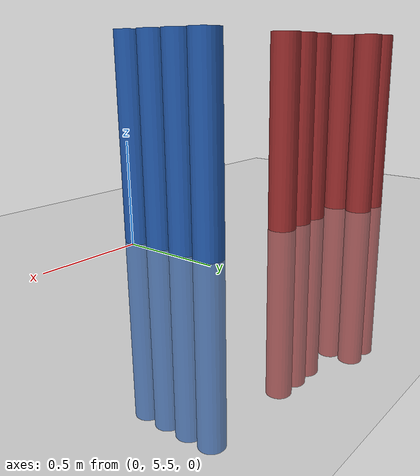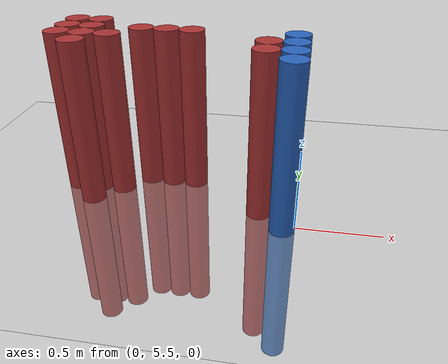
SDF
<sdf version="1.6">
 <world name="default">
  <model name="ground_plane">
   <static>1</static>
   <link name="link">
    <collision name="collision">
     <geometry><plane><normal>0 0 1</normal><size>100 100</size></plane></geometry>
     <surface><friction><ode><mu>100</mu><mu2>50</mu2></ode></friction></surface>
    </collision>
    <visual name="visual">
     <cast_shadows>0</cast_shadows>
     <geometry><plane><normal>0 0 1</normal><size>100 100</size></plane></geometry>
     <material>
      <script><uri>file://media/materials/scripts/gazebo.material</uri><name>Gazebo/Grey</name></script>
     </material>
    </visual>
   </link>
  </model>
  <model name="unit_cylinder_194">
   <static>1</static>
   <pose>-1.425000 5.775000 0.000000 0.000000 0.000000 0.000000</pose>
   <link name="link">
    <inertial>
     <mass>1</mass>
     <inertia><ixx>0.145833</ixx><ixy>0</ixy><ixz>0</ixz><iyy>0.145833</iyy><iyz>0</iyz><izz>0.125</izz></inertia>
    </inertial>
    <collision name="collision">
     <geometry><cylinder><radius>0.075000</radius><length>2</length></cylinder></geometry>
    </collision>
    <visual name="visual">
     <geometry><cylinder><radius>0.075000</radius><length>2</length></cylinder></geometry>
     <material>
      <ambient>0.648000 0.192000 0.192000 1</ambient>
      <diffuse>0.648000 0.192000 0.192000 1</diffuse>
     </material>
     <material>
      <script><name>Gazebo/Grey</name><uri>file://media/materials/scripts/gazebo.material</uri></script>
     </material>
    </visual>
   </link>
  </model>
  <model name="unit_cylinder_195">
   <static>1</static>
   <pose>-1.425000 5.925000 0.000000 0.000000 0.000000 0.000000</pose>
   <link name="link">
    <inertial>
     <mass>1</mass>
     <inertia><ixx>0.145833</ixx><ixy>0</ixy><ixz>0</ixz><iyy>0.145833</iyy><iyz>0</iyz><izz>0.125</izz></inertia>
    </inertial>
    <collision name="collision">
     <geometry><cylinder><radius>0.075000</radius><length>2</length></cylinder></geometry>
    </collision>
    <visual name="visual">
     <geometry><cylinder><radius>0.075000</radius><length>2</length></cylinder></geometry>
     <material>
      <ambient>0.648000 0.192000 0.192000 1</ambient>
      <diffuse>0.648000 0.192000 0.192000 1</diffuse>
     </material>
     <material>
      <script><name>Gazebo/Grey</name><uri>file://media/materials/scripts/gazebo.material</uri></script>
     </material>
    </visual>
   </link>
  </model>
  <model name="unit_cylinder_196">
   <static>1</static>
   <pose>-1.425000 6.075000 0.000000 0.000000 0.000000 0.000000</pose>
   <link name="link">
    <inertial>
     <mass>1</mass>
     <inertia><ixx>0.145833</ixx><ixy>0</ixy><ixz>0</ixz><iyy>0.145833</iyy><iyz>0</iyz><izz>0.125</izz></inertia>
    </inertial>
    <collision name="collision">
     <geometry><cylinder><radius>0.075000</radius><length>2</length></cylinder></geometry>
    </collision>
    <visual name="visual">
     <geometry><cylinder><radius>0.075000</radius><length>2</length></cylinder></geometry>
     <material>
      <ambient>0.648000 0.192000 0.192000 1</ambient>
      <diffuse>0.648000 0.192000 0.192000 1</diffuse>
     </material>
     <material>
      <script><name>Gazebo/Grey</name><uri>file://media/materials/scripts/gazebo.material</uri></script>
     </material>
    </visual>
   </link>
  </model>
  <model name="unit_cylinder_202">
   <static>1</static>
   <pose>-1.275000 5.625000 0.000000 0.000000 0.000000 0.000000</pose>
   <link name="link">
    <inertial>
     <mass>1</mass>
     <inertia><ixx>0.145833</ixx><ixy>0</ixy><ixz>0</ixz><iyy>0.145833</iyy><iyz>0</iyz><izz>0.125</izz></inertia>
    </inertial>
    <collision name="collision">
     <geometry><cylinder><radius>0.075000</radius><length>2</length></cylinder></geometry>
    </collision>
    <visual name="visual">
     <geometry><cylinder><radius>0.075000</radius><length>2</length></cylinder></geometry>
     <material>
      <ambient>0.648000 0.192000 0.192000 1</ambient>
      <diffuse>0.648000 0.192000 0.192000 1</diffuse>
     </material>
     <material>
      <script><name>Gazebo/Grey</name><uri>file://media/materials/scripts/gazebo.material</uri></script>
     </material>
    </visual>
   </link>
  </model>
  <model name="unit_cylinder_203">
   <static>1</static>
   <pose>-1.275000 5.775000 0.000000 0.000000 0.000000 0.000000</pose>
   <link name="link">
    <inertial>
     <mass>1</mass>
     <inertia><ixx>0.145833</ixx><ixy>0</ixy><ixz>0</ixz><iyy>0.145833</iyy><iyz>0</iyz><izz>0.125</izz></inertia>
    </inertial>
    <collision name="collision">
     <geometry><cylinder><radius>0.075000</radius><length>2</length></cylinder></geometry>
    </collision>
    <visual name="visual">
     <geometry><cylinder><radius>0.075000</radius><length>2</length></cylinder></geometry>
     <material>
      <ambient>0.648000 0.192000 0.192000 1</ambient>
      <diffuse>0.648000 0.192000 0.192000 1</diffuse>
     </material>
     <material>
      <script><name>Gazebo/Grey</name><uri>file://media/materials/scripts/gazebo.material</uri></script>
     </material>
    </visual>
   </link>
  </model>
  <model name="unit_cylinder_204">
   <static>1</static>
   <pose>-1.275000 5.925000 0.000000 0.000000 0.000000 0.000000</pose>
   <link name="link">
    <inertial>
     <mass>1</mass>
     <inertia><ixx>0.145833</ixx><ixy>0</ixy><ixz>0</ixz><iyy>0.145833</iyy><iyz>0</iyz><izz>0.125</izz></inertia>
    </inertial>
    <collision name="collision">
     <geometry><cylinder><radius>0.075000</radius><length>2</length></cylinder></geometry>
    </collision>
    <visual name="visual">
     <geometry><cylinder><radius>0.075000</radius><length>2</length></cylinder></geometry>
     <material>
      <ambient>0.648000 0.192000 0.192000 1</ambient>
      <diffuse>0.648000 0.192000 0.192000 1</diffuse>
     </material>
     <material>
      <script><name>Gazebo/Grey</name><uri>file://media/materials/scripts/gazebo.material</uri></script>
     </material>
    </visual>
   </link>
  </model>
  <model name="unit_cylinder_205">
   <static>1</static>
   <pose>-1.275000 6.075000 0.000000 0.000000 0.000000 0.000000</pose>
   <link name="link">
    <inertial>
     <mass>1</mass>
     <inertia><ixx>0.145833</ixx><ixy>0</ixy><ixz>0</ixz><iyy>0.145833</iyy><iyz>0</iyz><izz>0.125</izz></inertia>
    </inertial>
    <collision name="collision">
     <geometry><cylinder><radius>0.075000</radius><length>2</length></cylinder></geometry>
    </collision>
    <visual name="visual">
     <geometry><cylinder><radius>0.075000</radius><length>2</length></cylinder></geometry>
     <material>
      <ambient>0.648000 0.192000 0.192000 1</ambient>
      <diffuse>0.648000 0.192000 0.192000 1</diffuse>
     </material>
     <material>
      <script><name>Gazebo/Grey</name><uri>file://media/materials/scripts/gazebo.material</uri></script>
     </material>
    </visual>
   </link>
  </model>
  <model name="unit_cylinder_210">
   <static>1</static>
   <pose>-1.125000 5.775000 0.000000 0.000000 0.000000 0.000000</pose>
   <link name="link">
    <inertial>
     <mass>1</mass>
     <inertia><ixx>0.145833</ixx><ixy>0</ixy><ixz>0</ixz><iyy>0.145833</iyy><iyz>0</iyz><izz>0.125</izz></inertia>
    </inertial>
    <collision name="collision">
     <geometry><cylinder><radius>0.075000</radius><length>2</length></cylinder></geometry>
    </collision>
    <visual name="visual">
     <geometry><cylinder><radius>0.075000</radius><length>2</length></cylinder></geometry>
     <material>
      <ambient>0.648000 0.192000 0.192000 1</ambient>
      <diffuse>0.648000 0.192000 0.192000 1</diffuse>
     </material>
     <material>
      <script><name>Gazebo/Grey</name><uri>file://media/materials/scripts/gazebo.material</uri></script>
     </material>
    </visual>
   </link>
  </model>
  <model name="unit_cylinder_215">
   <static>1</static>
   <pose>-0.975000 5.925000 0.000000 0.000000 0.000000 0.000000</pose>
   <link name="link">
    <inertial>
     <mass>1</mass>
     <inertia><ixx>0.145833</ixx><ixy>0</ixy><ixz>0</ixz><iyy>0.145833</iyy><iyz>0</iyz><izz>0.125</izz></inertia>
    </inertial>
    <collision name="collision">
     <geometry><cylinder><radius>0.075000</radius><length>2</length></cylinder></geometry>
    </collision>
    <visual name="visual">
     <geometry><cylinder><radius>0.075000</radius><length>2</length></cylinder></geometry>
     <material>
      <ambient>0.648000 0.192000 0.192000 1</ambient>
      <diffuse>0.648000 0.192000 0.192000 1</diffuse>
     </material>
     <material>
      <script><name>Gazebo/Grey</name><uri>file://media/materials/scripts/gazebo.material</uri></script>
     </material>
    </visual>
   </link>
  </model>
  <model name="unit_cylinder_219">
   <static>1</static>
   <pose>-0.825000 5.925000 0.000000 0.000000 0.000000 0.000000</pose>
   <link name="link">
    <inertial>
     <mass>1</mass>
     <inertia><ixx>0.145833</ixx><ixy>0</ixy><ixz>0</ixz><iyy>0.145833</iyy><iyz>0</iyz><izz>0.125</izz></inertia>
    </inertial>
    <collision name="collision">
     <geometry><cylinder><radius>0.075000</radius><length>2</length></cylinder></geometry>
    </collision>
    <visual name="visual">
     <geometry><cylinder><radius>0.075000</radius><length>2</length></cylinder></geometry>
     <material>
      <ambient>0.648000 0.192000 0.192000 1</ambient>
      <diffuse>0.648000 0.192000 0.192000 1</diffuse>
     </material>
     <material>
      <script><name>Gazebo/Grey</name><uri>file://media/materials/scripts/gazebo.material</uri></script>
     </material>
    </visual>
   </link>
  </model>
  <model name="unit_cylinder_221">
   <static>1</static>
   <pose>-0.675000 5.925000 0.000000 0.000000 0.000000 0.000000</pose>
   <link name="link">
    <inertial>
     <mass>1</mass>
     <inertia><ixx>0.145833</ixx><ixy>0</ixy><ixz>0</ixz><iyy>0.145833</iyy><iyz>0</iyz><izz>0.125</izz></inertia>
    </inertial>
    <collision name="collision">
     <geometry><cylinder><radius>0.075000</radius><length>2</length></cylinder></geometry>
    </collision>
    <visual name="visual">
     <geometry><cylinder><radius>0.075000</radius><length>2</length></cylinder></geometry>
     <material>
      <ambient>0.648000 0.192000 0.192000 1</ambient>
      <diffuse>0.648000 0.192000 0.192000 1</diffuse>
     </material>
     <material>
      <script><name>Gazebo/Grey</name><uri>file://media/materials/scripts/gazebo.material</uri></script>
     </material>
    </visual>
   </link>
  </model>
  <model name="unit_cylinder_224">
   <static>1</static>
   <pose>-0.225000 5.625000 0.000000 0.000000 0.000000 0.000000</pose>
   <link name="link">
    <inertial>
     <mass>1</mass>
     <inertia><ixx>0.145833</ixx><ixy>0</ixy><ixz>0</ixz><iyy>0.145833</iyy><iyz>0</iyz><izz>0.125</izz></inertia>
    </inertial>
    <collision name="collision">
     <geometry><cylinder><radius>0.075000</radius><length>2</length></cylinder></geometry>
    </collision>
    <visual name="visual">
     <geometry><cylinder><radius>0.075000</radius><length>2</length></cylinder></geometry>
     <material>
      <ambient>0.648000 0.192000 0.192000 1</ambient>
      <diffuse>0.648000 0.192000 0.192000 1</diffuse>
     </material>
     <material>
      <script><name>Gazebo/Grey</name><uri>file://media/materials/scripts/gazebo.material</uri></script>
     </material>
    </visual>
   </link>
  </model>
  <model name="unit_cylinder_225">
   <static>1</static>
   <pose>-0.225000 5.775000 0.000000 0.000000 0.000000 0.000000</pose>
   <link name="link">
    <inertial>
     <mass>1</mass>
     <inertia><ixx>0.145833</ixx><ixy>0</ixy><ixz>0</ixz><iyy>0.145833</iyy><iyz>0</iyz><izz>0.125</izz></inertia>
    </inertial>
    <collision name="collision">
     <geometry><cylinder><radius>0.075000</radius><length>2</length></cylinder></geometry>
    </collision>
    <visual name="visual">
     <geometry><cylinder><radius>0.075000</radius><length>2</length></cylinder></geometry>
     <material>
      <ambient>0.648000 0.192000 0.192000 1</ambient>
      <diffuse>0.648000 0.192000 0.192000 1</diffuse>
     </material>
     <material>
      <script><name>Gazebo/Grey</name><uri>file://media/materials/scripts/gazebo.material</uri></script>
     </material>
    </visual>
   </link>
  </model>
  <model name="unit_cylinder_241">
   <static>1</static>
   <pose>-0.075000 5.475000 0.000000 0.000000 0.000000 0.000000</pose>
   <link name="link">
    <inertial>
     <mass>1</mass>
     <inertia><ixx>0.145833</ixx><ixy>0</ixy><ixz>0</ixz><iyy>0.145833</iyy><iyz>0</iyz><izz>0.125</izz></inertia>
    </inertial>
    <collision name="collision">
     <geometry><cylinder><radius>0.075000</radius><length>2</length></cylinder></geometry>
    </collision>
    <visual name="visual">
     <geometry><cylinder><radius>0.075000</radius><length>2</length></cylinder></geometry>
     <material>
      <ambient>0.152000 0.379000 0.720000 1</ambient>
      <diffuse>0.152000 0.379000 0.720000 1</diffuse>
     </material>
     <material>
      <script><name>Gazebo/Grey</name><uri>file://media/materials/scripts/gazebo.material</uri></script>
     </material>
    </visual>
   </link>
  </model>
  <model name="unit_cylinder_242">
   <static>1</static>
   <pose>-0.075000 5.625000 0.000000 0.000000 0.000000 0.000000</pose>
   <link name="link">
    <inertial>
     <mass>1</mass>
     <inertia><ixx>0.145833</ixx><ixy>0</ixy><ixz>0</ixz><iyy>0.145833</iyy><iyz>0</iyz><izz>0.125</izz></inertia>
    </inertial>
    <collision name="collision">
     <geometry><cylinder><radius>0.075000</radius><length>2</length></cylinder></geometry>
    </collision>
    <visual name="visual">
     <geometry><cylinder><radius>0.075000</radius><length>2</length></cylinder></geometry>
     <material>
      <ambient>0.152000 0.379000 0.720000 1</ambient>
      <diffuse>0.152000 0.379000 0.720000 1</diffuse>
     </material>
     <material>
      <script><name>Gazebo/Grey</name><uri>file://media/materials/scripts/gazebo.material</uri></script>
     </material>
    </visual>
   </link>
  </model>
  <model name="unit_cylinder_243">
   <static>1</static>
   <pose>-0.075000 5.775000 0.000000 0.000000 0.000000 0.000000</pose>
   <link name="link">
    <inertial>
     <mass>1</mass>
     <inertia><ixx>0.145833</ixx><ixy>0</ixy><ixz>0</ixz><iyy>0.145833</iyy><iyz>0</iyz><izz>0.125</izz></inertia>
    </inertial>
    <collision name="collision">
     <geometry><cylinder><radius>0.075000</radius><length>2</length></cylinder></geometry>
    </collision>
    <visual name="visual">
     <geometry><cylinder><radius>0.075000</radius><length>2</length></cylinder></geometry>
     <material>
      <ambient>0.152000 0.379000 0.720000 1</ambient>
      <diffuse>0.152000 0.379000 0.720000 1</diffuse>
     </material>
     <material>
      <script><name>Gazebo/Grey</name><uri>file://media/materials/scripts/gazebo.material</uri></script>
     </material>
    </visual>
   </link>
  </model>
  <model name="unit_cylinder_244">
   <static>1</static>
   <pose>-0.075000 5.925000 0.000000 0.000000 0.000000 0.000000</pose>
   <link name="link">
    <inertial>
     <mass>1</mass>
     <inertia><ixx>0.145833</ixx><ixy>0</ixy><ixz>0</ixz><iyy>0.145833</iyy><iyz>0</iyz><izz>0.125</izz></inertia>
    </inertial>
    <collision name="collision">
     <geometry><cylinder><radius>0.075000</radius><length>2</length></cylinder></geometry>
    </collision>
    <visual name="visual">
     <geometry><cylinder><radius>0.075000</radius><length>2</length></cylinder></geometry>
     <material>
      <ambient>0.152000 0.379000 0.720000 1</ambient>
      <diffuse>0.152000 0.379000 0.720000 1</diffuse>
     </material>
     <material>
      <script><name>Gazebo/Grey</name><uri>file://media/materials/scripts/gazebo.material</uri></script>
     </material>
    </visual>
   </link>
  </model>
 </world>
</sdf>
